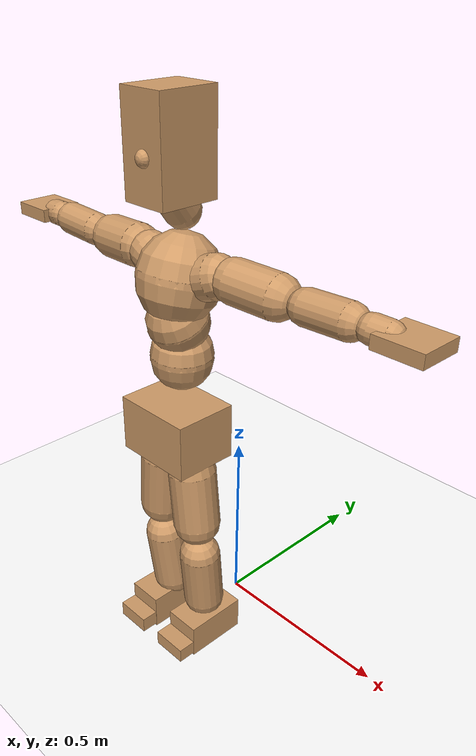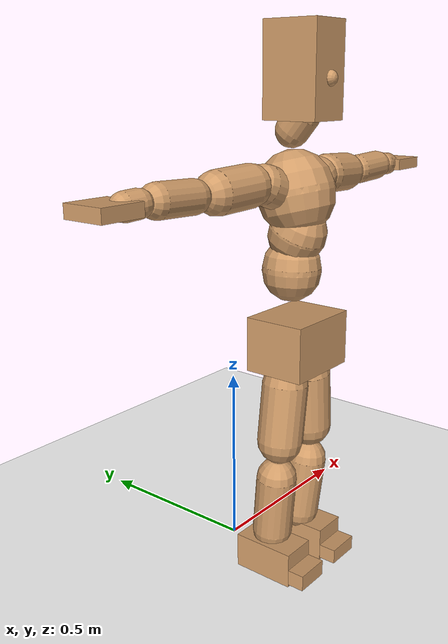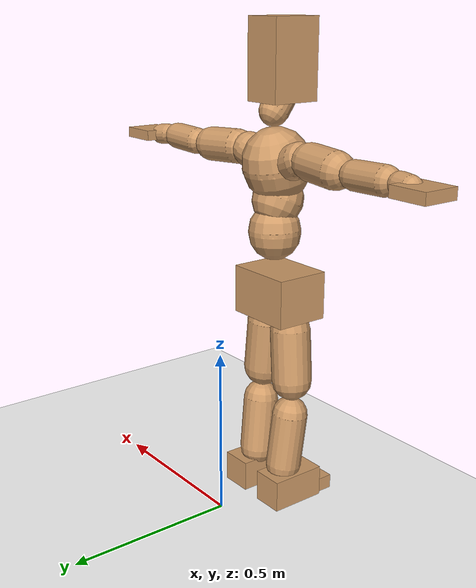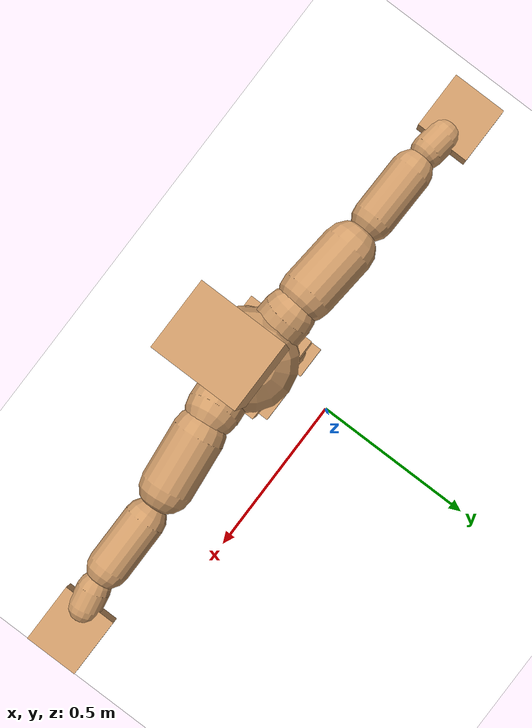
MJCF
<mujoco model="humanoid">
  <option integrator="implicitfast" />

  <visual>
    <global offwidth="1280" offheight="960" />
    <headlight active="1" ambient="0.34 0.34 0.34" diffuse="0.5 0.5 0.5" />
  </visual>

  <default>
    <joint damping="2" stiffness="2" armature="0.01" limited="true" solimplimit="0 .99 .01" />
    <geom condim="1" friction="0.7 0.005 0.0001" solimp=".99 .99 .003" solref="0.015 1" margin="0.001" rgba="0.8 0.6 .4 1" />
    <default class="smplcontact">
      <geom condim="3" friction="1. 0.005 0.0001" solref="0.015 1" solimp="0.98 0.98 0.001" priority="1" />
    </default>
    <default class="stiff_medium">
      <joint stiffness="10" />
    </default>
    <default class="stiff_medium_higher">
      <joint stiffness="50" />
    </default>
    <default class="stiff_high">
      <joint stiffness="100" />
    </default>
  </default>

  <asset>
    <texture type="skybox" builtin="gradient" rgb1="0.99 0.99 0.99" rgb2="0.608 0.828 0.892" width="100" />
    <texture builtin="flat" height="1278" mark="cross" markrgb="1 1 1" name="texgeom" random="0.01" rgb1="0.8 0.6 0.4" rgb2="0.8 0.6 0.4" type="cube" width="127" />
    <texture name="texplane" type="2d" builtin="checker" markrgb="1 1 1" rgb1="0.756 0.772 0.76" rgb2="0.6 0.6 0.6" width="100" height="100" />
    <material name="MatPlane" reflectance="0.5" texture="texplane" texrepeat="1 1" texuniform="true" />
    <material name="geom" texture="texgeom" texuniform="true" />
  </asset>

  <worldbody>
    <light name="tracking_light" pos="0 0 7" dir="0 0 -1" directional="true" cutoff="100" exponent="1" diffuse="1 1 1" specular="0.1 0.1 0.1" mode="trackcom" />
    <camera name="back" pos="0 3 2.4" xyaxes="-1 0 0 0 -1 2" mode="trackcom" />
    <camera name="side" pos="-3 0 2.4" xyaxes="0 -1 0 1 0 2" mode="trackcom" />
    <camera name="front_side" pos="-2.8 -2.8 0.8" xyaxes="0.5 -0.5 0 0.1 0.1 1" mode="trackcom" />
    <geom condim="3" name="floor" pos="0 0 0" rgba="1 1 1 1" size="100 100 .2" type="plane" material="MatPlane" />
    <body name="Pelvis" pos="-0.0018 -0.2233 0.66443" euler="90 0 0">
      <site name="Pelvis" size="0.01" />
      <freejoint name="Pelvis" />
      <geom type="box" pos="-0.0000 -0.0121 -0.0055" size="0.1069 0.0722 0.083" quat="1.0000 0.0000 0.0000 0.0000" density="3165.830099" name="Pelvis" />
      <body name="L_Hip" pos="0.0482122 -0.0634042 -0.00471716">
        <joint name="L_Hip_x" type="hinge" pos="0 0 0" axis="1 0 0" stiffness="5.516044897959185" range="-160.0 22.92" class="stiff_medium" damping="7.086820424308188" armature="0.004046621137303417"/>
        <joint name="L_Hip_y" type="hinge" pos="0 0 0" axis="0 1 0" stiffness="5.558354489795918" range="-70.0 70.0" class="stiff_medium" damping="5.971297333501803" armature="0.006414918643736035"/>
        <joint name="L_Hip_z" type="hinge" pos="0 0 0" axis="0 0 1" stiffness="5.554733061224491" range="-28.65 90.0" class="stiff_medium" damping="4.738906907057702" armature="0.004042901508719612"/>
        <geom type="capsule" density="2040.816327" fromto="0.00478653 -0.0520275 -0.00062433 0.0190074 -0.208249 -0.00249732" size="0.0615" name="L_Hip" />
        <body name="L_Knee" pos="0.0237939 -0.260276 -0.00312165">
          <joint name="L_Knee_x" type="hinge" pos="0 0 0" axis="1 0 0" range="-5.16 171.89" damping="4.007581739843912" armature="0.004357777340306997" stiffness="1.1517275714285715"/>
          <joint name="L_Knee_y" type="hinge" pos="0 0 0" axis="0 1 0" range="-4.58 6.88" damping="4.975806992426258" armature="0.006887483517515756" stiffness="1.1233536513605442"/>
          <joint name="L_Knee_z" type="hinge" pos="0 0 0" axis="0 0 1" range="-6.88 4.58" damping="4.0205597244847" armature="0.004338208540335916" stiffness="1.1644279795918369"/>
          <geom type="capsule" density="1234.567901" fromto="-0.00187299 -0.0552185 -0.00603519 -0.00756133 -0.220874 -0.0242795" size="0.0541" name="L_Knee" />
          <body name="L_Ankle" pos="-0.00943432 -0.276093 -0.0303147">
            <joint name="L_Ankle_x" type="hinge" pos="0 0 0" axis="1 0 0" range="-45.84 45.84" class="stiff_medium" damping="4.056095762261686" armature="0.006587832419851515" stiffness="6.936994591836736"/>
            <joint name="L_Ankle_y" type="hinge" pos="0 0 0" axis="0 1 0" range="-74.48 22.92" class="stiff_medium" damping="2.0474937115311596" armature="0.006714771670549793" stiffness="6.936995204081633"/>
            <joint name="L_Ankle_z" type="hinge" pos="0 0 0" axis="0 0 1" range="-4.58 4.58" class="stiff_medium" damping="4.340997190963911" armature="0.007545797394317505" stiffness="6.936994795918368"/>
            <geom type="box" pos="0.0161632 -0.0165794 0.0167875" size="0.0483 0.0464 0.085" quat="1.0000 0.0000 0.0000 0.0000" density="449.071558" name="L_Ankle" class="smplcontact" />
            <body name="L_Toe" pos="0.0183137 -0.0387085 0.0827584">
              <joint name="L_Toe_x" type="hinge" pos="0 0 0" axis="1 0 0" range="-91.67 22.92" armature="0.008027665327962128" damping="1.4924877513638495" stiffness="1.3874019387755103"/>
              <joint name="L_Toe_y" type="hinge" pos="0 0 0" axis="0 1 0" range="-4.58 4.58" armature="0.008610331090817736" damping="1.5457030566999272" stiffness="1.3874018979591836"/>
              <joint name="L_Toe_z" type="hinge" pos="0 0 0" axis="0 0 1" range="-4.58 4.58" armature="0.009788449040249388" damping="1.6480591129229556" stiffness="1.3873999999999997"/>
              <geom type="box" pos="-0.0020811 0.00381535 0.0172038" size="0.0478 0.02 0.0496" quat="1.0000 0.0000 0.0000 0.0000" density="423.206892" name="L_Toe" class="smplcontact" />
            </body>
          </body>
        </body>
      </body>
      <body name="R_Hip" pos="-0.0469635 -0.0627798 -0.00298291">
        <joint name="R_Hip_x" type="hinge" pos="0 0 0" axis="1 0 0" stiffness="5.516044897959185" range="-160.0 22.92" class="stiff_medium" damping="7.086820424308188" armature="0.004046621137303417"/>
        <joint name="R_Hip_y" type="hinge" pos="0 0 0" axis="0 1 0" stiffness="5.558354489795918" range="-70.0 70.0" class="stiff_medium" damping="5.971297333501803" armature="0.006414918643736035"/>
        <joint name="R_Hip_z" type="hinge" pos="0 0 0" axis="0 0 1" stiffness="5.554733061224491" range="-90.0 28.65" class="stiff_medium" damping="4.738906907057702" armature="0.004042901508719612"/>
        <geom type="capsule" density="2040.816327" fromto="-0.00534149 -0.053068 -0.00124866 -0.0212272 -0.212342 -0.00492527" size="0.0606" name="R_Hip" />
        <body name="R_Knee" pos="-0.0265687 -0.26541 -0.00617393">
          <joint name="R_Knee_x" type="hinge" pos="0 0 0" axis="1 0 0" range="-5.16 171.89" damping="4.007581739843912" armature="0.004357777340306997" stiffness="1.1517275714285715"/>
          <joint name="R_Knee_y" type="hinge" pos="0 0 0" axis="0 1 0" range="-6.88 4.58" damping="4.975806992426258" armature="0.006887483517515756" stiffness="1.1233536513605442"/>
          <joint name="R_Knee_z" type="hinge" pos="0 0 0" axis="0 0 1" range="-4.58 6.88" damping="4.0205597244847" armature="0.004338208540335916" stiffness="1.1644279795918369"/>
          <geom type="capsule" density="1234.567901" fromto="0.00221984 -0.0552879 -0.00589645 0.00874062 -0.221082 -0.0234471" size="0.0541" name="R_Knee" />
          <body name="R_Ankle" pos="0.0109605 -0.27637 -0.0293435">
            <joint name="R_Ankle_x" type="hinge" pos="0 0 0" axis="1 0 0" range="-45.84 45.84" class="stiff_medium" damping="4.056095762261686" armature="0.006587832419851515" stiffness="6.936994591836736"/>
            <joint name="R_Ankle_y" type="hinge" pos="0 0 0" axis="0 1 0" range="-22.92 74.48" class="stiff_medium" damping="2.0474937115311596" armature="0.006714771670549793" stiffness="6.936995204081633"/>
            <joint name="R_Ankle_z" type="hinge" pos="0 0 0" axis="0 0 1" range="-4.58 4.58" class="stiff_medium" damping="4.340997190963911" armature="0.007545797394317505" stiffness="6.936994795918368"/>
            <geom type="box" pos="-0.0147064 -0.0120704 0.0177587" size="0.0483 0.0478 0.0865" quat="1.0000 0.0000 0.0000 0.0000" density="434.700981" name="R_Ankle" class="smplcontact" />
            <body name="R_Toe" pos="-0.01762 -0.033367 0.0855332">
              <joint name="R_Toe_x" type="hinge" pos="0 0 0" axis="1 0 0" range="-91.67 22.92" armature="0.008027665327962128" damping="1.4924877513638495" stiffness="1.3874019387755103"/>
              <joint name="R_Toe_y" type="hinge" pos="0 0 0" axis="0 1 0" range="-4.58 4.58" armature="0.008610331090817736" damping="1.5457030566999272" stiffness="1.3874018979591836"/>
              <joint name="R_Toe_z" type="hinge" pos="0 0 0" axis="0 0 1" range="-4.58 4.58" armature="0.009788449040249388" damping="1.6480591129229556" stiffness="1.3873999999999997"/>
              <geom type="box" pos="0.00291354 0.00312165 0.015747" size="0.0479 0.0216 0.0493" quat="1.0000 0.0000 0.0000 0.0000" density="407.384095" name="R_Toe" class="smplcontact" />
            </body>
          </body>
        </body>
      </body>
      <body name="Torso" pos="-0.0025 0.109 -0.0267">
        <joint name="Torso_x" type="hinge" pos="0 0 0" axis="1 0 0" range="-25.78 57.3" class="stiff_medium" damping="13.552842678409757" armature="0.008902877110070252" stiffness="9.169547346938776"/>
        <joint name="Torso_y" type="hinge" pos="0 0 0" axis="0 1 0" range="-57.3 57.3" class="stiff_high" damping="13.0910840113294" armature="0.004616662167530643" stiffness="92.8032387755102"/>
        <joint name="Torso_z" type="hinge" pos="0 0 0" axis="0 0 1" range="-34.38 34.38" class="stiff_high" damping="16.735219651427858" armature="0.00743380160058141" stiffness="94.18719782608693"/>
        <geom type="capsule" density="2040.816327" fromto="0.0025 0.0608 0.0005 0.003 0.0743 0.0006" size="0.0769" name="Torso" />
        <body name="Spine" pos="0.0055 0.1352 0.0011">
          <joint name="Spine_x" type="hinge" pos="0 0 0" axis="1 0 0" stiffness="9.01820469387755" range="-25.78 57.3" class="stiff_medium" damping="13.34079664922012" armature="0.00877123853741809"/>
          <joint name="Spine_y" type="hinge" pos="0 0 0" axis="0 1 0" stiffness="9.090177708333332" range="-57.3 57.3" class="stiff_high" damping="5.161188657094203" armature="0.004578751993500952"/>
          <joint name="Spine_z" type="hinge" pos="0 0 0" axis="0 0 1" stiffness="17.784460425531915" range="-34.38 34.38" class="stiff_high" damping="9.080247199237979" armature="0.006439055284661458"/>
          <geom type="capsule" density="2040.816327" fromto="0.0007 0.0238 0.0114 0.0008 0.0291 0.014" size="0.0755" name="Spine" />
          <body name="Chest" pos="0.0015 0.0529 0.0254">
            <joint name="Chest_x" type="hinge" pos="0 0 0" axis="1 0 0" stiffness="8.661746382978722" range="-25.78 57.3" class="stiff_medium" damping="13.02648600099741" armature="0.008706960468933692"/>
            <joint name="Chest_y" type="hinge" pos="0 0 0" axis="0 1 0" stiffness="7.5926715" range="-57.3 57.3" class="stiff_high" damping="4.7082003473255245" armature="0.004561789967173484"/>
            <joint name="Chest_z" type="hinge" pos="0 0 0" axis="0 0 1" stiffness="17.84300266666667" range="-34.38 34.38" class="stiff_high" damping="8.784878922099079" armature="0.006007186613964887"/>
            <geom type="capsule" density="2040.816327" fromto="-0.0009 0.0682 -0.0173 -0.001 0.0833 -0.0212" size="0.1002" name="Chest" />
            <body name="Neck" pos="-0.0028 0.2139 -0.0429">
              <joint name="Neck_x" type="hinge" pos="0 0 0" axis="1 0 0" range="-28.65 57.3" class="stiff_medium_higher" damping="10.00000000000001" armature="0.010000000000000024" stiffness="50.0"/>
              <joint name="Neck_y" type="hinge" pos="0 0 0" axis="0 1 0" range="-40.11 40.11" class="stiff_medium_higher" damping="10.0" armature="0.010000000000000002" stiffness="50.0"/>
              <joint name="Neck_z" type="hinge" pos="0 0 0" axis="0 0 1" range="-40.11 40.11" class="stiff_medium_higher" damping="9.999999999999995" armature="0.00999999999999999" stiffness="50.0"/>
              <geom type="capsule" density="1000" fromto="0.001 0.013 0.0103 0.0041 0.052 0.0411" size="0.0436" name="Neck" />
              <body name="Head" pos="0.0052 0.065 0.0513">
                <joint name="Head_x" type="hinge" pos="0 0 0" axis="1 0 0" range="-28.65 57.3" class="stiff_medium_higher" damping="2.0000000000000067" armature="0.01000000000000007" stiffness="50.0"/>
                <joint name="Head_y" type="hinge" pos="0 0 0" axis="0 1 0" range="-40.11 40.11" class="stiff_medium_higher" damping="2.0" armature="0.01" stiffness="50.0"/>
                <joint name="Head_z" type="hinge" pos="0 0 0" axis="0 0 1" range="-40.11 40.11" class="stiff_medium_higher" damping="2.000000000000004" armature="0.010000000000000042" stiffness="50.0"/>
                <geom type="box" pos="-0.0042 0.0876 -0.0116" size="0.0606 0.1154 0.076" quat="1.0000 0.0000 0.0000 0.0000" density="1018.069894" name="Head" />
                <geom type="capsule" name="nose" size="0.02 0.01" pos="0 0.07 0.05" quat="1 0 0 0" mass="0" contype="0" conaffinity="0" />
              </body>
            </body>
            <body name="L_Thorax" pos="0.056736 0.087624 -0.024552">
              <joint name="L_Thorax_x" type="hinge" pos="0 0 0" axis="1 0 0" range="-10.89 4.58" class="stiff_medium_higher" damping="12.073989155581337" armature="0.006103547499963851" stiffness="29.855836734693874"/>
              <joint name="L_Thorax_y" type="hinge" pos="0 0 0" axis="0 1 0" range="-28.65 17.19" class="stiff_medium_higher" damping="10.214535436259759" armature="0.004406253122408194" stiffness="29.59905255102041"/>
              <joint name="L_Thorax_z" type="hinge" pos="0 0 0" axis="0 0 1" range="-31.51 40.11" class="stiff_medium_higher" damping="10.213229208570617" armature="0.004404703736593434" stiffness="29.601891836734694"/>
              <geom type="capsule" density="1000" fromto="0.013104 0.004392 -0.001296 0.052416 0.017568 -0.005112" size="0.0521" name="L_Thorax" />
              <body name="L_Shoulder" pos="0.06552 0.02196 -0.006408">
                <joint name="L_Shoulder_x" type="hinge" pos="0 0 0" axis="1 0 0" range="-97.4 97.4" class="stiff_medium" damping="3.816037481009819" armature="0.0067316941952791165" stiffness="6.008947142857144"/>
                <joint name="L_Shoulder_y" type="hinge" pos="0 0 0" axis="0 1 0" range="-108.86 80.21" class="stiff_medium" damping="3.085407593335858" armature="0.004452622924573313" stiffness="5.938908979591837"/>
                <joint name="L_Shoulder_z" type="hinge" pos="0 0 0" axis="0 0 1" range="-97.4 85.94" class="stiff_medium" damping="3.085736867293793" armature="0.0044504768880475" stiffness="5.943041020408163"/>
                <geom type="capsule" density="1000" fromto="0.037368 -0.001872 -0.00396 0.149544 -0.007344 -0.01584" size="0.0517" name="L_Shoulder" />
                <body name="L_Elbow" pos="0.186912 -0.009216 -0.0198">
                  <joint name="L_Elbow_x" type="hinge" pos="0 0 0" axis="1 0 0" range="-17.19 4.58" damping="3.467084339074037" armature="0.007812078787163376" stiffness="1.2309833673469388"/>
                  <joint name="L_Elbow_y" type="hinge" pos="0 0 0" axis="0 1 0" range="-180.0 17.19" damping="2.6833581342929707" armature="0.004681990980242877" stiffness="1.2303160612244897"/>
                  <joint name="L_Elbow_z" type="hinge" pos="0 0 0" axis="0 0 1" range="-100.84 4.58" damping="2.681363628926727" armature="0.0046707237185502236" stiffness="1.2314512857142859"/>
                  <geom type="capsule" density="1000" fromto="0.035856 0.001296 -0.000144 0.143568 0.005184 -0.000648" size="0.0405" name="L_Elbow" />
                  <body name="L_Wrist" pos="0.179424 0.00648 -0.000864">
                    <joint name="L_Wrist_x" type="hinge" pos="0 0 0" axis="1 0 0" range="-180.0 22.92" armature="0.008300985683301733" damping="1.506483319871543" stiffness="1.3670015102040816"/>
                    <joint name="L_Wrist_y" type="hinge" pos="0 0 0" axis="0 1 0" range="-17.19 17.19" armature="0.005593025349625004" damping="1.231727021263533" stiffness="1.3562887346938775"/>
                    <joint name="L_Wrist_z" type="hinge" pos="0 0 0" axis="0 0 1" range="-22.92 22.92" armature="0.005437597501508022" damping="1.2164249243523042" stiffness="1.3606097142857143"/>
                    <geom type="capsule" density="1000" fromto="0.012096 -0.001152 -0.00216 0.048384 -0.00468 -0.00864" size="0.0318" name="L_Wrist" class="smplcontact" />
                    <body name="L_Hand" pos="0.06048 -0.005904 -0.010728">
                      <joint name="L_Hand_x" type="hinge" pos="0 0 0" axis="1 0 0" range="-17.19 17.19" armature="0.009790185370932838" damping="1.6791585353469924" stiffness="1.4399999999999997"/>
                      <joint name="L_Hand_y" type="hinge" pos="0 0 0" axis="0 1 0" range="-51.57 51.57" armature="0.007462581531814667" damping="1.4660230152226887" stiffness="1.4399999999999997"/>
                      <joint name="L_Hand_z" type="hinge" pos="0 0 0" axis="0 0 1" range="-91.67 91.67" armature="0.006842126926257296" damping="1.4037565867208248" stiffness="1.4399999999999997"/>
                      <geom type="box" pos="0.035496 0.00072 -0.004176" size="0.0585 0.0158 0.0538" quat="1.0000 0.0000 0.0000 0.0000" density="400.552564" name="L_Hand" class="smplcontact" />
                    </body>
                  </body>
                </body>
              </body>
            </body>
            <body name="R_Thorax" pos="-0.058896 0.085536 -0.027792">
              <joint name="R_Thorax_x" type="hinge" pos="0 0 0" axis="1 0 0" range="-10.89 4.58" class="stiff_medium_higher" damping="12.073989155581337" armature="0.006103547499963851" stiffness="29.855836734693874"/>
              <joint name="R_Thorax_y" type="hinge" pos="0 0 0" axis="0 1 0" range="-17.19 28.65" class="stiff_medium_higher" damping="10.214535436259759" armature="0.004406253122408194" stiffness="29.59905255102041"/>
              <joint name="R_Thorax_z" type="hinge" pos="0 0 0" axis="0 0 1" range="-40.11 31.51" class="stiff_medium_higher" damping="10.213229208570617" armature="0.004404703736593434" stiffness="29.601891836734694"/>
              <geom type="capsule" density="1000" fromto="-0.013824 0.00468 -0.001296 -0.055296 0.01872 -0.005256" size="0.0511" name="R_Thorax" />
              <body name="R_Shoulder" pos="-0.06912 0.023472 -0.006552">
                <joint name="R_Shoulder_x" type="hinge" pos="0 0 0" axis="1 0 0" range="-97.4 97.4" class="stiff_medium" damping="3.816037481009819" armature="0.0067316941952791165" stiffness="6.008947142857144"/>
                <joint name="R_Shoulder_y" type="hinge" pos="0 0 0" axis="0 1 0" range="-80.21 108.86" class="stiff_medium" damping="3.085407593335858" armature="0.004452622924573313" stiffness="5.938908979591837"/>
                <joint name="R_Shoulder_z" type="hinge" pos="0 0 0" axis="0 0 1" range="-85.94 97.4" class="stiff_medium" damping="3.085736867293793" armature="0.0044504768880475" stiffness="5.943041020408163"/>
                <geom type="capsule" density="1000" fromto="-0.036504 -0.001944 -0.003096 -0.14616 -0.007704 -0.012312" size="0.0531" name="R_Shoulder" />
                <body name="R_Elbow" pos="-0.182664 -0.009576 -0.015408">
                  <joint name="R_Elbow_x" type="hinge" pos="0 0 0" axis="1 0 0" range="-17.19 4.58" damping="3.467084339074037" armature="0.007812078787163376" stiffness="1.2309833673469388"/>
                  <joint name="R_Elbow_y" type="hinge" pos="0 0 0" axis="0 1 0" range="-17.19 180.0" damping="2.6833581342929707" armature="0.004681990980242877" stiffness="1.2303160612244897"/>
                  <joint name="R_Elbow_z" type="hinge" pos="0 0 0" axis="0 0 1" range="-4.58 100.84" damping="2.681363628926727" armature="0.0046707237185502236" stiffness="1.2314512857142859"/>
                  <geom type="capsule" density="1000" fromto="-0.036792 0.001152 -0.000792 -0.147024 0.004464 -0.003168" size="0.0408" name="R_Elbow" />
                  <body name="R_Wrist" pos="-0.183816 0.005616 -0.004032">
                    <joint name="R_Wrist_x" type="hinge" pos="0 0 0" axis="1 0 0" range="-180.0 22.92" armature="0.008300985683301733" damping="1.506483319871543" stiffness="1.3670015102040816"/>
                    <joint name="R_Wrist_y" type="hinge" pos="0 0 0" axis="0 1 0" range="-17.19 17.19" armature="0.005593025349625004" damping="1.231727021263533" stiffness="1.3562887346938775"/>
                    <joint name="R_Wrist_z" type="hinge" pos="0 0 0" axis="0 0 1" range="-22.92 22.92" armature="0.005437597501508022" damping="1.2164249243523042" stiffness="1.3606097142857143"/>
                    <geom type="capsule" density="1000" fromto="-0.012168 -0.000864 -0.001512 -0.048744 -0.003528 -0.005976" size="0.0326" name="R_Wrist" class="smplcontact" />
                    <body name="R_Hand" pos="-0.060912 -0.004392 -0.007416">
                      <joint name="R_Hand_x" type="hinge" pos="0 0 0" axis="1 0 0" range="-17.19 17.19" armature="0.009790185370932838" damping="1.6791585353469924" stiffness="1.4399999999999997"/>
                      <joint name="R_Hand_y" type="hinge" pos="0 0 0" axis="0 1 0" range="-51.57 51.57" armature="0.007462581531814667" damping="1.4660230152226887" stiffness="1.4399999999999997"/>
                      <joint name="R_Hand_z" type="hinge" pos="0 0 0" axis="0 0 1" range="-91.67 91.67" armature="0.006842126926257296" damping="1.4037565867208248" stiffness="1.4399999999999997"/>
                      <geom type="box" pos="-0.033264 -0.000648 -0.005688" size="0.0569 0.0164 0.0546" quat="1.0000 0.0000 0.0000 0.0000" density="403.679611" name="R_Hand" class="smplcontact" />
                    </body>
                  </body>
                </body>
              </body>
            </body>
          </body>
        </body>
      </body>
    </body>
  </worldbody>
  <actuator>
    <general name="L_Hip_x" joint="L_Hip_x" biastype="affine" gainprm="158.4925534094321" biasprm="-118.77410464336843 -99.28880816326533 -0.9449093899077584" ctrllimited="true" ctrlrange="-1 1" forcerange="-198.57761632653066 198.57761632653066" />
    <general name="L_Hip_y" joint="L_Hip_y" biastype="affine" gainprm="122.2345994183349" biasprm="0.0 -100.05038081632652 -1.1942594667003605" ctrllimited="true" ctrlrange="-1 1" forcerange="-200.10076163265305 200.10076163265305" />
    <general name="L_Hip_z" joint="L_Hip_z" biastype="affine" gainprm="103.52632863777004" biasprm="53.53004856238678 -99.98519510204083 -0.9477813814115404" ctrllimited="true" ctrlrange="-1 1" forcerange="-199.97039020408167 199.97039020408167" />
    <general name="L_Knee_x" joint="L_Knee_x" biastype="affine" gainprm="160.15318355812073" biasprm="150.81807565459175 -103.65548142857143 -1.001895434960978" ctrllimited="true" ctrlrange="-1 1" forcerange="-207.31096285714287 207.31096285714287" />
    <general name="L_Knee_y" joint="L_Knee_y" biastype="affine" gainprm="10.110927592395496" biasprm="2.0292437576360944 -101.10182862244898 -1.2439517481065645" ctrllimited="true" ctrlrange="-1 1" forcerange="-202.20365724489795 202.20365724489795" />
    <general name="L_Knee_z" joint="L_Knee_z" biastype="affine" gainprm="10.480623776807144" biasprm="-2.103441072134069 -104.79851816326531 -1.005139931121175" ctrllimited="true" ctrlrange="-1 1" forcerange="-209.59703632653063 209.59703632653063" />
    <general name="L_Ankle_x" joint="L_Ankle_x" biastype="affine" gainprm="49.95004017974311" biasprm="0.0 -62.43295132653062 -1.3520319207538951" ctrllimited="true" ctrlrange="-1 1" forcerange="-124.86590265306124 124.86590265306124" />
    <general name="L_Ankle_y" joint="L_Ankle_y" biastype="affine" gainprm="53.06647407170274" biasprm="-28.091451777587203 -62.4329568367347 -1.3649958076874396" ctrllimited="true" ctrlrange="-1 1" forcerange="-124.8659136734694 124.8659136734694" />
    <general name="L_Ankle_z" joint="L_Ankle_z" biastype="affine" gainprm="4.990645522546139" biasprm="0.0 -62.43295316326531 -1.446999063654637" ctrllimited="true" ctrlrange="-1 1" forcerange="-124.86590632653062 124.86590632653062" />
    <general name="L_Toe_x" joint="L_Toe_x" biastype="affine" gainprm="49.94579027070809" biasprm="-29.965730701729477 -49.946469795918375 -0.5969951005455398" ctrllimited="true" ctrlrange="-1 1" forcerange="-99.89293959183675 99.89293959183675" />
    <general name="L_Toe_y" joint="L_Toe_y" biastype="affine" gainprm="3.9925248749478777" biasprm="0.0 -49.946468326530606 -0.618281222679971" ctrllimited="true" ctrlrange="-1 1" forcerange="-99.89293665306121 99.89293665306121" />
    <general name="L_Toe_z" joint="L_Toe_z" biastype="affine" gainprm="3.992519413192878" biasprm="0.0 -49.94639999999999 -0.6592236451691823" ctrllimited="true" ctrlrange="-1 1" forcerange="-99.89279999999998 99.89279999999998" />
    <general name="R_Hip_x" joint="R_Hip_x" biastype="affine" gainprm="158.4925534094321" biasprm="-118.77410464336843 -99.28880816326533 -0.9449093899077584" ctrllimited="true" ctrlrange="-1 1" forcerange="-198.57761632653066 198.57761632653066" />
    <general name="R_Hip_y" joint="R_Hip_y" biastype="affine" gainprm="122.2345994183349" biasprm="0.0 -100.05038081632652 -1.1942594667003605" ctrllimited="true" ctrlrange="-1 1" forcerange="-200.10076163265305 200.10076163265305" />
    <general name="R_Hip_z" joint="R_Hip_z" biastype="affine" gainprm="103.52632863777004" biasprm="-53.53004856238678 -99.98519510204083 -0.9477813814115404" ctrllimited="true" ctrlrange="-1 1" forcerange="-199.97039020408167 199.97039020408167" />
    <general name="R_Knee_x" joint="R_Knee_x" biastype="affine" gainprm="160.15318355812073" biasprm="150.81807565459175 -103.65548142857143 -1.001895434960978" ctrllimited="true" ctrlrange="-1 1" forcerange="-207.31096285714287 207.31096285714287" />
    <general name="R_Knee_y" joint="R_Knee_y" biastype="affine" gainprm="10.110927592395496" biasprm="-2.0292437576360944 -101.10182862244898 -1.2439517481065645" ctrllimited="true" ctrlrange="-1 1" forcerange="-202.20365724489795 202.20365724489795" />
    <general name="R_Knee_z" joint="R_Knee_z" biastype="affine" gainprm="10.480623776807144" biasprm="2.103441072134069 -104.79851816326531 -1.005139931121175" ctrllimited="true" ctrlrange="-1 1" forcerange="-209.59703632653063 209.59703632653063" />
    <general name="R_Ankle_x" joint="R_Ankle_x" biastype="affine" gainprm="49.95004017974311" biasprm="0.0 -62.43295132653062 -1.3520319207538951" ctrllimited="true" ctrlrange="-1 1" forcerange="-124.86590265306124 124.86590265306124" />
    <general name="R_Ankle_y" joint="R_Ankle_y" biastype="affine" gainprm="53.06647407170274" biasprm="28.091451777587203 -62.4329568367347 -1.3649958076874396" ctrllimited="true" ctrlrange="-1 1" forcerange="-124.8659136734694 124.8659136734694" />
    <general name="R_Ankle_z" joint="R_Ankle_z" biastype="affine" gainprm="4.990645522546139" biasprm="0.0 -62.43295316326531 -1.446999063654637" ctrllimited="true" ctrlrange="-1 1" forcerange="-124.86590632653062 124.86590632653062" />
    <general name="R_Toe_x" joint="R_Toe_x" biastype="affine" gainprm="49.94579027070809" biasprm="-29.965730701729477 -49.946469795918375 -0.5969951005455398" ctrllimited="true" ctrlrange="-1 1" forcerange="-99.89293959183675 99.89293959183675" />
    <general name="R_Toe_y" joint="R_Toe_y" biastype="affine" gainprm="3.9925248749478777" biasprm="0.0 -49.946468326530606 -0.618281222679971" ctrllimited="true" ctrlrange="-1 1" forcerange="-99.89293665306121 99.89293665306121" />
    <general name="R_Toe_z" joint="R_Toe_z" biastype="affine" gainprm="3.992519413192878" biasprm="0.0 -49.94639999999999 -0.6592236451691823" ctrllimited="true" ctrlrange="-1 1" forcerange="-99.89279999999998 99.89279999999998" />
    <general name="Torso_x" joint="Torso_x" biastype="affine" gainprm="159.5522741935428" biasprm="60.533072732071105 -220.0691363265306 -3.6140913809092683" ctrllimited="true" ctrlrange="-1 1" forcerange="-330.1037044897959 330.1037044897959" />
    <general name="Torso_y" joint="Torso_y" biastype="affine" gainprm="222.74417949919243" biasprm="0.0 -222.72777306122444 -2.61821680226588" ctrllimited="true" ctrlrange="-1 1" forcerange="-334.0916595918367 334.0916595918367" />
    <general name="Torso_z" joint="Torso_z" biastype="affine" gainprm="135.6395555322117" biasprm="0.0 -226.04927478260865 -3.347043930285572" ctrllimited="true" ctrlrange="-1 1" forcerange="-339.07391217391296 339.07391217391296" />
    <general name="Spine_x" joint="Spine_x" biastype="affine" gainprm="156.91887653880858" biasprm="59.53397915868133 -216.43691265306123 -3.5575457731253657" ctrllimited="true" ctrlrange="-1 1" forcerange="-324.6553689795918 324.6553689795918" />
    <general name="Spine_y" joint="Spine_y" biastype="affine" gainprm="218.18033528360831" biasprm="0.0 -218.16426499999997 -2.5805943285471016" ctrllimited="true" ctrlrange="-1 1" forcerange="-327.24639749999994 327.24639749999994" />
    <general name="Spine_z" joint="Spine_z" biastype="affine" gainprm="128.05754726632452" biasprm="0.0 -213.41352510638296 -3.0267490664126595" ctrllimited="true" ctrlrange="-1 1" forcerange="-320.12028765957444 320.12028765957444" />
    <general name="Chest_x" joint="Chest_x" biastype="affine" gainprm="150.71641833588714" biasprm="57.180807726855576 -207.88191319148933 -3.473729600265976" ctrllimited="true" ctrlrange="-1 1" forcerange="-311.822869787234 311.822869787234" />
    <general name="Chest_y" joint="Chest_y" biastype="affine" gainprm="182.23753888217735" biasprm="0.0 -182.224116 -2.3541001736627623" ctrllimited="true" ctrlrange="-1 1" forcerange="-273.336174 273.336174" />
    <general name="Chest_z" joint="Chest_z" biastype="affine" gainprm="128.4790824510765" biasprm="0.0 -214.11603200000008 -2.928292974033026" ctrllimited="true" ctrlrange="-1 1" forcerange="-321.1740480000001 321.1740480000001" />
    <general name="Neck_x" joint="Neck_x" biastype="affine" gainprm="27.00198885760427" biasprm="9.000662952534757 -36.0 -0.8000000000000009" ctrllimited="true" ctrlrange="-1 1" forcerange="-72.0 72.0" />
    <general name="Neck_y" joint="Neck_y" biastype="affine" gainprm="25.20185626709732" biasprm="0.0 -36.0 -0.8" ctrllimited="true" ctrlrange="-1 1" forcerange="-72.0 72.0" />
    <general name="Neck_z" joint="Neck_z" biastype="affine" gainprm="25.20185626709732" biasprm="0.0 -36.0 -0.7999999999999996" ctrllimited="true" ctrlrange="-1 1" forcerange="-72.0 72.0" />
    <general name="Head_x" joint="Head_x" biastype="affine" gainprm="18.001325905069514" biasprm="6.000441968356505 -24.0 -0.8000000000000027" ctrllimited="true" ctrlrange="-1 1" forcerange="-48.0 48.0" />
    <general name="Head_y" joint="Head_y" biastype="affine" gainprm="16.801237511398213" biasprm="0.0 -24.0 -0.8" ctrllimited="true" ctrlrange="-1 1" forcerange="-48.0 48.0" />
    <general name="Head_z" joint="Head_z" biastype="affine" gainprm="16.801237511398213" biasprm="0.0 -24.0 -0.8000000000000016" ctrllimited="true" ctrlrange="-1 1" forcerange="-48.0 48.0" />
    <general name="L_Thorax_x" joint="L_Thorax_x" biastype="affine" gainprm="9.673378350953524" biasprm="-3.9456378406281036 -71.6540081632653 -0.9659191324465071" ctrllimited="true" ctrlrange="-1 1" forcerange="-143.3080163265306 143.3080163265306" />
    <general name="L_Thorax_y" joint="L_Thorax_y" biastype="affine" gainprm="28.417183544117204" biasprm="-7.104295886029301 -71.03772612244899 -0.8171628349007808" ctrllimited="true" ctrlrange="-1 1" forcerange="-142.07545224489797 142.07545224489797" />
    <general name="L_Thorax_z" joint="L_Thorax_z" biastype="affine" gainprm="44.40300862710895" biasprm="5.331832926461002 -71.04454040816327 -0.8170583366856494" ctrllimited="true" ctrlrange="-1 1" forcerange="-142.08908081632654 142.08908081632654" />
    <general name="L_Shoulder_x" joint="L_Shoulder_x" biastype="affine" gainprm="49.031586481638236" biasprm="0.0 -28.84294628571429 -1.0176099949359518" ctrllimited="true" ctrlrange="-1 1" forcerange="-57.68589257142858 57.68589257142858" />
    <general name="L_Shoulder_y" joint="L_Shoulder_y" biastype="affine" gainprm="47.03464849860549" biasprm="-7.127215737478433 -28.506763102040818 -0.8227753582228955" ctrllimited="true" ctrlrange="-1 1" forcerange="-57.013526204081636 57.013526204081636" />
    <general name="L_Shoulder_z" joint="L_Shoulder_z" biastype="affine" gainprm="45.640938300504814" biasprm="-2.852869820681719 -28.52659689795918 -0.8228631646116782" ctrllimited="true" ctrlrange="-1 1" forcerange="-57.05319379591836 57.05319379591836" />
    <general name="L_Elbow_x" joint="L_Elbow_x" biastype="affine" gainprm="8.418999556824799" biasprm="-4.876600110774494 -44.3154012244898 -0.5547334942518459" ctrllimited="true" ctrlrange="-1 1" forcerange="-88.6308024489796 88.6308024489796" />
    <general name="L_Elbow_y" joint="L_Elbow_y" biastype="affine" gainprm="76.216930306958" biasprm="-62.92853807635192 -44.291378204081624 -0.4293373014868753" ctrllimited="true" ctrlrange="-1 1" forcerange="-88.58275640816325 88.58275640816325" />
    <general name="L_Elbow_z" joint="L_Elbow_z" biastype="affine" gainprm="40.78402844988696" biasprm="-37.24028247567937 -44.33224628571429 -0.4290181806282763" ctrllimited="true" ctrlrange="-1 1" forcerange="-88.66449257142858 88.66449257142858" />
    <general name="L_Wrist_x" joint="L_Wrist_x" biastype="affine" gainprm="14.524208352236945" biasprm="-11.243163059182827 -8.202009061224489 -0.6025933279486173" ctrllimited="true" ctrlrange="-1 1" forcerange="-16.404018122448978 16.404018122448978" />
    <general name="L_Wrist_y" joint="L_Wrist_y" biastype="affine" gainprm="2.4414995534598853" biasprm="0.0 -8.137732408163265 -0.4926908085054132" ctrllimited="true" ctrlrange="-1 1" forcerange="-16.27546481632653 16.27546481632653" />
    <general name="L_Wrist_z" joint="L_Wrist_z" biastype="affine" gainprm="3.2657038528614217" biasprm="0.0 -8.163658285714286 -0.4865699697409217" ctrllimited="true" ctrlrange="-1 1" forcerange="-16.32731657142857 16.32731657142857" />
    <general name="L_Hand_x" joint="L_Hand_x" biastype="affine" gainprm="2.5921909303300104" biasprm="0.0 -8.639999999999999 -0.671663414138797" ctrllimited="true" ctrlrange="-1 1" forcerange="-17.279999999999998 17.279999999999998" />
    <general name="L_Hand_y" joint="L_Hand_y" biastype="affine" gainprm="7.776572790990029" biasprm="0.0 -8.639999999999999 -0.5864092060890755" ctrllimited="true" ctrlrange="-1 1" forcerange="-17.279999999999998 17.279999999999998" />
    <general name="L_Hand_z" joint="L_Hand_z" biastype="affine" gainprm="13.82351033061966" biasprm="0.0 -8.639999999999999 -0.56150263468833" ctrllimited="true" ctrlrange="-1 1" forcerange="-17.279999999999998 17.279999999999998" />
    <general name="R_Thorax_x" joint="R_Thorax_x" biastype="affine" gainprm="9.673378350953524" biasprm="-3.9456378406281036 -71.6540081632653 -0.9659191324465071" ctrllimited="true" ctrlrange="-1 1" forcerange="-143.3080163265306 143.3080163265306" />
    <general name="R_Thorax_y" joint="R_Thorax_y" biastype="affine" gainprm="28.417183544117204" biasprm="7.1042958860292975 -71.03772612244899 -0.8171628349007808" ctrllimited="true" ctrlrange="-1 1" forcerange="-142.07545224489797 142.07545224489797" />
    <general name="R_Thorax_z" joint="R_Thorax_z" biastype="affine" gainprm="44.40300862710895" biasprm="-5.331832926461002 -71.04454040816327 -0.8170583366856494" ctrllimited="true" ctrlrange="-1 1" forcerange="-142.08908081632654 142.08908081632654" />
    <general name="R_Shoulder_x" joint="R_Shoulder_x" biastype="affine" gainprm="49.031586481638236" biasprm="0.0 -28.84294628571429 -1.0176099949359518" ctrllimited="true" ctrlrange="-1 1" forcerange="-57.68589257142858 57.68589257142858" />
    <general name="R_Shoulder_y" joint="R_Shoulder_y" biastype="affine" gainprm="47.03464849860549" biasprm="7.127215737478433 -28.506763102040818 -0.8227753582228955" ctrllimited="true" ctrlrange="-1 1" forcerange="-57.013526204081636 57.013526204081636" />
    <general name="R_Shoulder_z" joint="R_Shoulder_z" biastype="affine" gainprm="45.640938300504814" biasprm="2.8528698206817125 -28.52659689795918 -0.8228631646116782" ctrllimited="true" ctrlrange="-1 1" forcerange="-57.05319379591836 57.05319379591836" />
    <general name="R_Elbow_x" joint="R_Elbow_x" biastype="affine" gainprm="8.418999556824799" biasprm="-4.876600110774494 -44.3154012244898 -0.5547334942518459" ctrllimited="true" ctrlrange="-1 1" forcerange="-88.6308024489796 88.6308024489796" />
    <general name="R_Elbow_y" joint="R_Elbow_y" biastype="affine" gainprm="76.216930306958" biasprm="62.92853807635192 -44.291378204081624 -0.4293373014868753" ctrllimited="true" ctrlrange="-1 1" forcerange="-88.58275640816325 88.58275640816325" />
    <general name="R_Elbow_z" joint="R_Elbow_z" biastype="affine" gainprm="40.78402844988696" biasprm="37.24028247567937 -44.33224628571429 -0.4290181806282763" ctrllimited="true" ctrlrange="-1 1" forcerange="-88.66449257142858 88.66449257142858" />
    <general name="R_Wrist_x" joint="R_Wrist_x" biastype="affine" gainprm="14.524208352236945" biasprm="-11.243163059182827 -8.202009061224489 -0.6025933279486173" ctrllimited="true" ctrlrange="-1 1" forcerange="-16.404018122448978 16.404018122448978" />
    <general name="R_Wrist_y" joint="R_Wrist_y" biastype="affine" gainprm="2.4414995534598853" biasprm="0.0 -8.137732408163265 -0.4926908085054132" ctrllimited="true" ctrlrange="-1 1" forcerange="-16.27546481632653 16.27546481632653" />
    <general name="R_Wrist_z" joint="R_Wrist_z" biastype="affine" gainprm="3.2657038528614217" biasprm="0.0 -8.163658285714286 -0.4865699697409217" ctrllimited="true" ctrlrange="-1 1" forcerange="-16.32731657142857 16.32731657142857" />
    <general name="R_Hand_x" joint="R_Hand_x" biastype="affine" gainprm="2.5921909303300104" biasprm="0.0 -8.639999999999999 -0.671663414138797" ctrllimited="true" ctrlrange="-1 1" forcerange="-17.279999999999998 17.279999999999998" />
    <general name="R_Hand_y" joint="R_Hand_y" biastype="affine" gainprm="7.776572790990029" biasprm="0.0 -8.639999999999999 -0.5864092060890755" ctrllimited="true" ctrlrange="-1 1" forcerange="-17.279999999999998 17.279999999999998" />
    <general name="R_Hand_z" joint="R_Hand_z" biastype="affine" gainprm="13.82351033061966" biasprm="0.0 -8.639999999999999 -0.56150263468833" ctrllimited="true" ctrlrange="-1 1" forcerange="-17.279999999999998 17.279999999999998" />
  </actuator>
  <contact>
    <exclude body1="Torso" body2="Chest" />
    <exclude body1="Head" body2="Chest" />
    <exclude body1="R_Knee" body2="R_Toe" />
    <exclude body1="R_Knee" body2="L_Ankle" />
    <exclude body1="R_Knee" body2="L_Toe" />
    <exclude body1="L_Knee" body2="L_Toe" />
    <exclude body1="L_Knee" body2="R_Ankle" />
    <exclude body1="L_Knee" body2="R_Toe" />
    <exclude body1="L_Shoulder" body2="Chest" />
    <exclude body1="R_Shoulder" body2="Chest" />
  </contact>
  <sensor>
    <framelinvel name="sensor_Pelvis_framelinvel" objtype="xbody" objname="Pelvis" />
    <framelinvel name="sensor_L_Hip_framelinvel" objtype="xbody" objname="L_Hip" />
    <framelinvel name="sensor_L_Knee_framelinvel" objtype="xbody" objname="L_Knee" />
    <framelinvel name="sensor_L_Ankle_framelinvel" objtype="xbody" objname="L_Ankle" />
    <framelinvel name="sensor_L_Toe_framelinvel" objtype="xbody" objname="L_Toe" />
    <framelinvel name="sensor_R_Hip_framelinvel" objtype="xbody" objname="R_Hip" />
    <framelinvel name="sensor_R_Knee_framelinvel" objtype="xbody" objname="R_Knee" />
    <framelinvel name="sensor_R_Ankle_framelinvel" objtype="xbody" objname="R_Ankle" />
    <framelinvel name="sensor_R_Toe_framelinvel" objtype="xbody" objname="R_Toe" />
    <framelinvel name="sensor_Torso_framelinvel" objtype="xbody" objname="Torso" />
    <framelinvel name="sensor_Spine_framelinvel" objtype="xbody" objname="Spine" />
    <framelinvel name="sensor_Chest_framelinvel" objtype="xbody" objname="Chest" />
    <framelinvel name="sensor_Neck_framelinvel" objtype="xbody" objname="Neck" />
    <framelinvel name="sensor_Head_framelinvel" objtype="xbody" objname="Head" />
    <framelinvel name="sensor_L_Thorax_framelinvel" objtype="xbody" objname="L_Thorax" />
    <framelinvel name="sensor_L_Shoulder_framelinvel" objtype="xbody" objname="L_Shoulder" />
    <framelinvel name="sensor_L_Elbow_framelinvel" objtype="xbody" objname="L_Elbow" />
    <framelinvel name="sensor_L_Wrist_framelinvel" objtype="xbody" objname="L_Wrist" />
    <framelinvel name="sensor_L_Hand_framelinvel" objtype="xbody" objname="L_Hand" />
    <framelinvel name="sensor_R_Thorax_framelinvel" objtype="xbody" objname="R_Thorax" />
    <framelinvel name="sensor_R_Shoulder_framelinvel" objtype="xbody" objname="R_Shoulder" />
    <framelinvel name="sensor_R_Elbow_framelinvel" objtype="xbody" objname="R_Elbow" />
    <framelinvel name="sensor_R_Wrist_framelinvel" objtype="xbody" objname="R_Wrist" />
    <framelinvel name="sensor_R_Hand_framelinvel" objtype="xbody" objname="R_Hand" />
    <frameangvel name="sensor_Pelvis_frameangvel" objtype="xbody" objname="Pelvis" />
    <frameangvel name="sensor_L_Hip_frameangvel" objtype="xbody" objname="L_Hip" />
    <frameangvel name="sensor_L_Knee_frameangvel" objtype="xbody" objname="L_Knee" />
    <frameangvel name="sensor_L_Ankle_frameangvel" objtype="xbody" objname="L_Ankle" />
    <frameangvel name="sensor_L_Toe_frameangvel" objtype="xbody" objname="L_Toe" />
    <frameangvel name="sensor_R_Hip_frameangvel" objtype="xbody" objname="R_Hip" />
    <frameangvel name="sensor_R_Knee_frameangvel" objtype="xbody" objname="R_Knee" />
    <frameangvel name="sensor_R_Ankle_frameangvel" objtype="xbody" objname="R_Ankle" />
    <frameangvel name="sensor_R_Toe_frameangvel" objtype="xbody" objname="R_Toe" />
    <frameangvel name="sensor_Torso_frameangvel" objtype="xbody" objname="Torso" />
    <frameangvel name="sensor_Spine_frameangvel" objtype="xbody" objname="Spine" />
    <frameangvel name="sensor_Chest_frameangvel" objtype="xbody" objname="Chest" />
    <frameangvel name="sensor_Neck_frameangvel" objtype="xbody" objname="Neck" />
    <frameangvel name="sensor_Head_frameangvel" objtype="xbody" objname="Head" />
    <frameangvel name="sensor_L_Thorax_frameangvel" objtype="xbody" objname="L_Thorax" />
    <frameangvel name="sensor_L_Shoulder_frameangvel" objtype="xbody" objname="L_Shoulder" />
    <frameangvel name="sensor_L_Elbow_frameangvel" objtype="xbody" objname="L_Elbow" />
    <frameangvel name="sensor_L_Wrist_frameangvel" objtype="xbody" objname="L_Wrist" />
    <frameangvel name="sensor_L_Hand_frameangvel" objtype="xbody" objname="L_Hand" />
    <frameangvel name="sensor_R_Thorax_frameangvel" objtype="xbody" objname="R_Thorax" />
    <frameangvel name="sensor_R_Shoulder_frameangvel" objtype="xbody" objname="R_Shoulder" />
    <frameangvel name="sensor_R_Elbow_frameangvel" objtype="xbody" objname="R_Elbow" />
    <frameangvel name="sensor_R_Wrist_frameangvel" objtype="xbody" objname="R_Wrist" />
    <frameangvel name="sensor_R_Hand_frameangvel" objtype="xbody" objname="R_Hand" />
    <subtreelinvel name="Chest_subtreelinvel" body="Chest" />
    <gyro name="Pelvis_gyro" site="Pelvis" />
  </sensor>
</mujoco>
